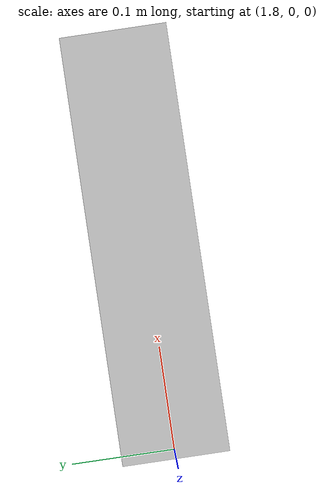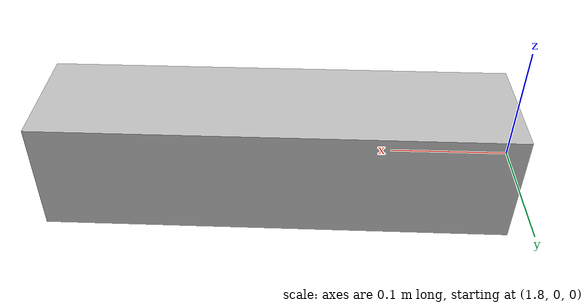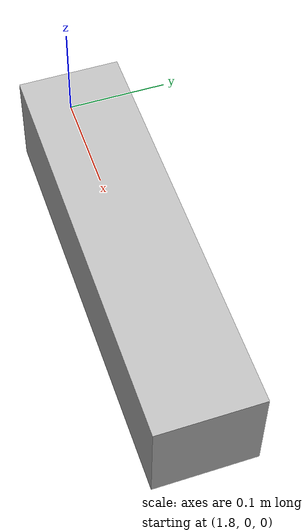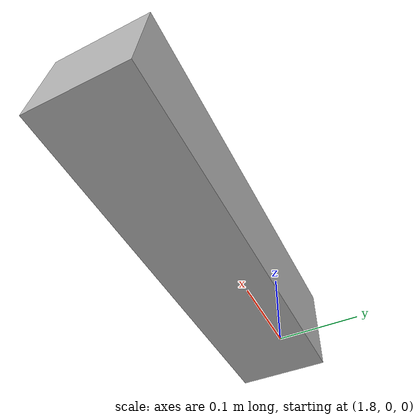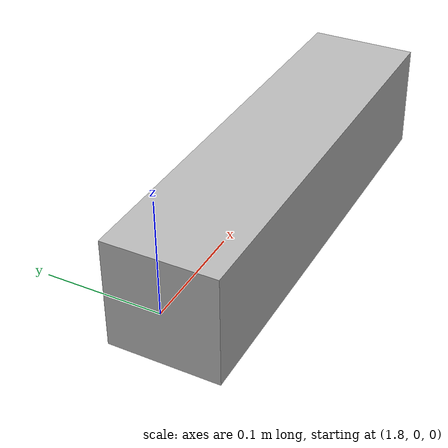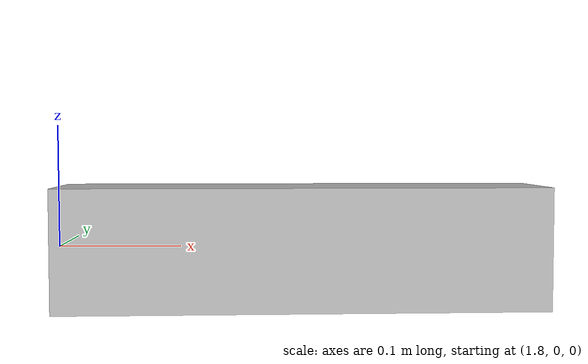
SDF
<?xml version='1.0'?>
<sdf version='1.4'>
    <model name='box'>
        <link name='box'>
            <inertial>
                <mass>0.3</mass>
            </inertial>
            <pose>2 0 0.0 0 0 0</pose>
            <collision name="collision">
                <geometry>
                    <box>
                        <size>0.4 0.1 0.1</size>
                    </box>
                </geometry>
            </collision>
            <visual name='visual'>
                <geometry>
                    <box>
                        <size>0.4 0.1 0.1</size>
                    </box>
                </geometry>
            </visual>
        </link>
    </model>
</sdf>
